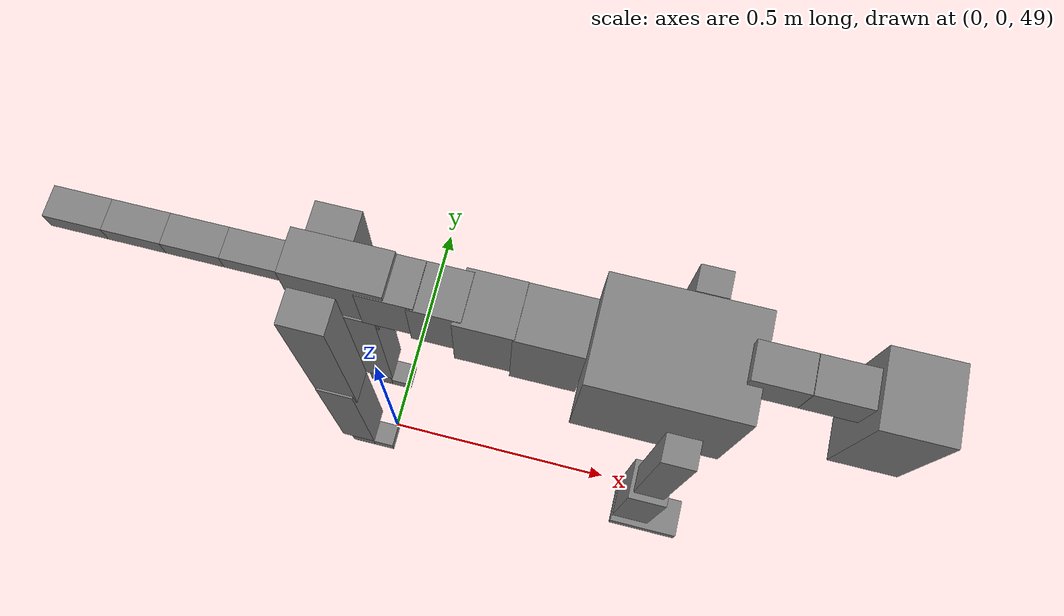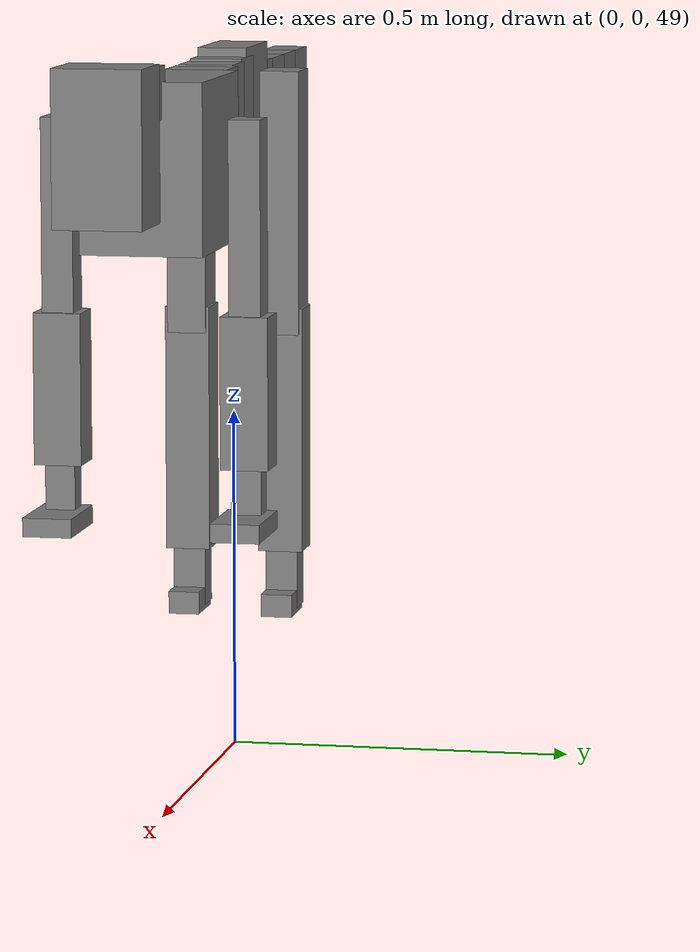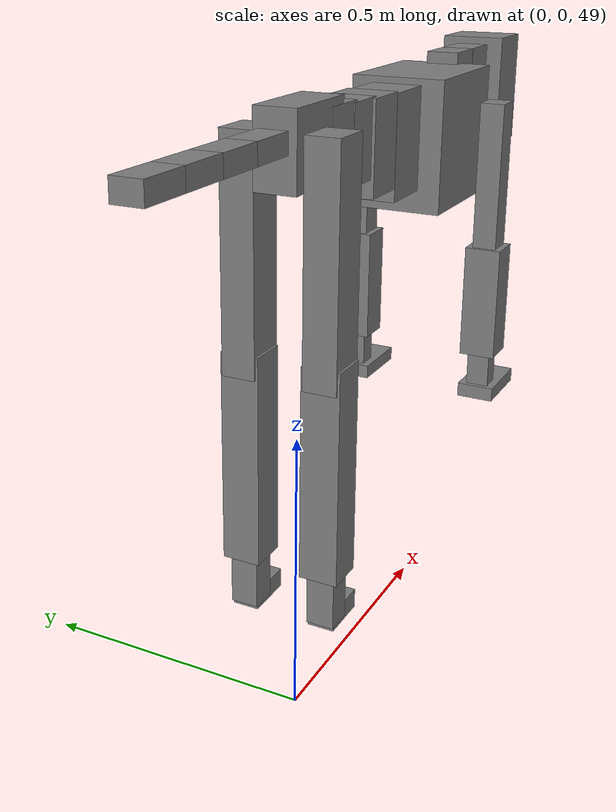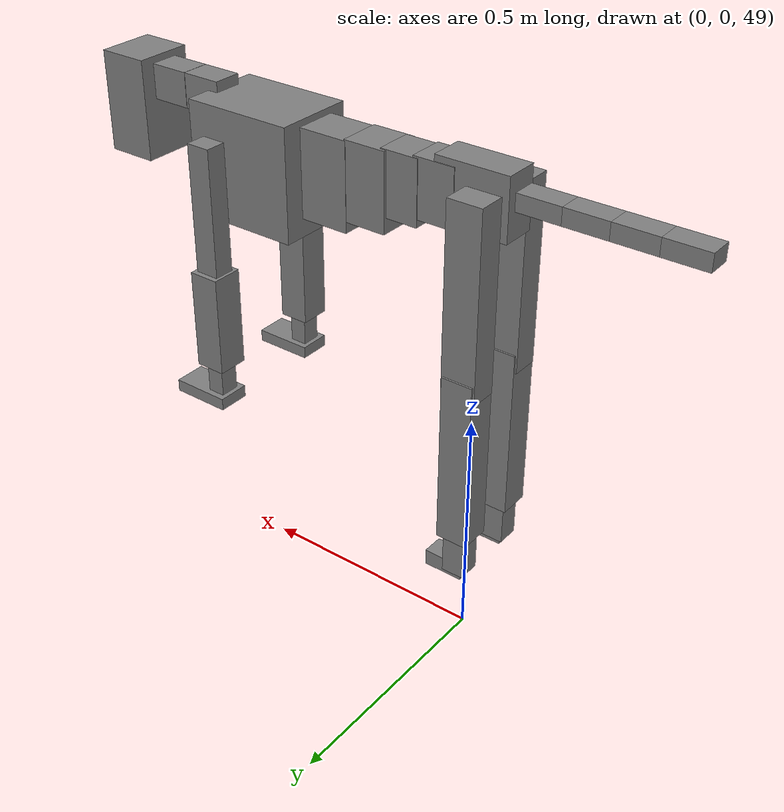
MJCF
<mujoco model="dog">

    <default>
        <joint armature="0.02" stiffness="1" damping="0.2" limited="true"/>
        <geom condim="3" friction="1 0.05 0.05" margin="0.01"/>
        <motor ctrllimited="true" ctrlrange="-1.0 1.0" forcelimited="true" gear="50"/>
    </default>

    <compiler inertiafromgeom="true" angle="radian"/>

    <option timestep="0.016" iterations="50" tolerance="1e-10" solver="Newton" jacobian="dense" cone="pyramidal"/>

    <size nconmax="20000" njmax="60000" nstack="5000000"/>
    <visual>
        <map force="0.1" zfar="30"/>
        <rgba haze="0.15 0.25 0.35 1"/>
        <quality shadowsize="2048"/>
        <global offwidth="800" offheight="800"/>
    </visual>

    <asset>
        <texture type="skybox" builtin="gradient" rgb1="0.3 0.5 0.7" rgb2="0 0 0" width="512" height="512"/>
        <texture name="texplane" type="2d" builtin="checker" rgb1=".2 .3 .4" rgb2=".1 0.15 0.2" width="512" height="512"
                 mark="cross" markrgb=".8 .8 .8"/>
        <texture name="texgeom" type="cube" builtin="flat" mark="cross" width="127" height="1278" rgb1="0.8 0.6 0.4"
                 rgb2="0.8 0.6 0.4" markrgb="1 1 1" random="0.01"/>

        <material name="matplane" reflectance="0.3" texture="texplane" texrepeat="1 1" texuniform="true"/>
        <material name="matgeom" texture="texgeom" texuniform="true" rgba="0.8 0.6 .4 1"/>
    </asset>

    <worldbody>
        <geom name="floor" pos="0 0 0" size="0 0 .25" type="plane" material="matplane" condim="3"/>

        <light directional="false" diffuse=".2 .2 .2" specular="0 0 0" pos="0 0 5" dir="0 0 -1" castshadow="false"/>
        <light mode="targetbodycom" target="torso" directional="false" diffuse=".8 .8 .8" specular="0.3 0.3 0.3"
               pos="0 0 4.0" dir="0 0 -1"/>

        <body name="root" pos="0 0 50">
            <freejoint name="root_1"/>
            <geom type="box" pos="0 0 -0.02" size="0.0774  0.0358  0.063" density="2030"/>

            <body name="spine1" pos="0.054 0 0">
                <joint name="spine1_y" axis="0 1 0" range="0 0.7" limited="true"/>
                <geom type="box" pos="0.02375 0 -0.03" size="0.04375  0.0375  0.05985" density="2030"/>

                <body name="spine2" pos="0.0612 0 0">
                    <joint name="spine2_y" axis="0 1 0" range="-0.15 0.15" limited="true"/>
                    <geom type="box" pos="0.03555  0  -0.04" size="0.04055  0.039  0.06615" density="2030"/>

                    <body name="spine3" pos="0.0730 0 0">
                        <joint name="spine3_y" axis="0 1 0" range="-0.15 0.15" limited="true"/>
                        <geom type="box" pos="0.03555  0  -0.057" size="0.04555  0.0445  0.081" density="2030"/>

                        <body name="spine4" pos="0.0780 0 0">
                            <joint name="spine4_y" axis="0 1 0" range="-0.15 0.15" limited="true"/>
                            <geom type="box" pos="0.05265  0  -0.07" size="0.05265  0.045  0.09135" density="2030"/>

                            <body name="torso" pos="0.1082 0 0">
                                <joint name="torso_y" axis="0 1 0" range="-0.15 0.15" limited="true"/>
                                <geom type="box" pos="0.11925  0  -0.085" size="0.11925  0.085  0.11745"
                                      density="2030"/>

                                <body name="neck1" pos="0.2160  0   0.0180">
                                    <joint name="neck1_y" axis="0 1 0" range="-1.2  -1" limited="true"/>
                                    <geom type="box" pos="0.0423  0  0" size="0.0423  0.03  0.036" density="2325"/>

                                    <body name="neck2" pos="0.0853  0  0">
                                        <joint name="neck2_y" axis="0 1 0" range="0.1  0" limited="true"/>
                                        <geom type="box" pos="0.0423  0  0" size="0.0423  0.03  0.036" density="2325"/>

                                        <body name="head" pos="0.0853  0  0">
                                            <joint name="head_y" axis="0 1 0" range="-0.3  -0.2" limited="true"/>
                                            <geom type="box" pos="0.0531  0  -0.055" size="0.0531  0.06  0.1044"
                                                  density="4030"/>

                                        </body>
                                    </body>
                                </body>

                                <body name="front_shoulder" pos="0.156  0   -0.0480">
                                    <joint name="front_shoulder_y" axis="0 1 0" range="-1 1.5" limited="true"/>
                                    <geom type="box" pos="0 0.13 -0.1201" size="0.0256  0.0219  0.1468" density="1158"/>
                                    <geom type="box" pos="0 -0.13 -0.1201" size="0.0256  0.0219  0.1468"
                                          density="1158"/>

                                    <body name="front_elbow" pos="0  0  -0.2403">
                                        <joint name="front_elbow_y" axis="0 1 0" range="-2 0" limited="true"/>
                                        <geom type="box" pos="0 0.13 -0.1050" size="0.0323  0.0330  0.1050"
                                              density="1081"/>
                                        <geom type="box" pos="0 -0.13 -0.1050" size="0.0323  0.0330  0.1050"
                                              density="1081"/>

                                        <body name="front_wrist" pos="0  0  -0.2099">
                                            <joint name="front_wrist_y" axis="0 1 0" range="-0.2 0" limited="true"/>
                                            <geom type="box" pos="0 0.13 -0.0392" size="0.0186  0.0207  0.0523"
                                                  density="1664"/>
                                            <geom type="box" pos="0 -0.13 -0.0392" size="0.0186  0.0207  0.0523"
                                                  density="1664"/>

                                            <body name="front_finger_end" pos="0  0  -0.0783">
                                                <joint name="front_finger_y" axis="0 1 0" range="-0.4 1"
                                                       limited="true"/>
                                                <geom type="box" pos="0.0340  0.13  0.0021"
                                                      size="0.0624  0.0340  0.0129" density="1515"/>
                                                <geom type="box" pos="0.0340  -0.13  0.0021"
                                                      size="0.0624  0.0340  0.0129" density="1515"/>

                                            </body>

                                        </body>
                                    </body>
                                </body>

                            </body>
                        </body>
                    </body>
                </body>
            </body>

            <body name="back_hip" pos="-0.03 0 -0.018">
                <joint name="back_hip_y" axis="0 1 0" range="-1.5 0.3" limited="true"/>
                <geom type="box" pos="0 0.07 -0.1715" size="0.0367  0.0288  0.1943" density="1154"/>
                <geom type="box" pos="0 -0.07 -0.1715" size="0.0367  0.0288  0.1943" density="1154"/>

                <body name="back_knee" pos="0  0  -0.3431">
                    <joint name="back_knee_y" axis="0 1 0" range="0 2.8" limited="true"/>
                    <geom type="box" pos="0 0.07 -0.1658" size="0.0333  0.0328  0.1813" density="1227"/>
                    <geom type="box" pos="0 -0.07 -0.1658" size="0.0333  0.0328  0.1813" density="1227"/>

                    <body name="back_ankle" pos="0  0  -0.3316">
                        <joint name="back_ankle_y" axis="0 1 0" range="-2.2 0" limited="true"/>
                        <geom type="box" pos="0 0.07 -0.0452" size="0.0236  0.0236  0.0565" density="1284"/>
                        <geom type="box" pos="0 -0.07 -0.0452" size="0.0236  0.0236  0.0565" density="1284"/>

                        <body name="back_toe_end" pos="0  0  -0.0904">
                            <joint name="back_toe_y" axis="0 1 0" range="-0.4 1" limited="true"/>
                            <geom type="box" pos="0.0228  0.07  -0.0017" size="0.0418  0.0228  0.0167" density="1515"/>
                            <geom type="box" pos="0.0228  -0.07  -0.0017" size="0.0418  0.0228  0.0167" density="1515"/>

                        </body>
                    </body>
                </body>
            </body>

            <body name="tail1" pos="-0.074 0 -0.006">
                <joint name="tail1_y" axis="0 1 0" range="-0.2 0.2" limited="true"/>
                <geom type="box" pos="-0.0536  0  0" size="0.045  0.025  0.0175" density="1587"/>

                <body name="tail2" pos="-0.09 0 0">
                    <joint name="tail2_y" axis="0 1 0" range="-0.2 0.2" limited="true"/>
                    <geom type="box" pos="-0.0536  0  0" size="0.045  0.025  0.0175" density="1587"/>

                    <body name="tail3" pos="-0.09 0 0">
                        <joint name="tail3_y" axis="0 1 0" range="-0.2 0.2" limited="true"/>
                        <geom type="box" pos="-0.0536  0  0" size="0.045  0.025  0.0175" density="1587"/>

                        <body name="tail4" pos="-0.09 0 0">
                            <joint name="tail4_y" axis="0 1 0" range="-0.2 0.2" limited="true"/>
                            <geom type="box" pos="-0.0536  0  0" size="0.045  0.025  0.0175" density="1587"/>

                        </body>
                    </body>
                </body>
            </body>
        </body>
    </worldbody>

    <actuator>
        <motor joint="spine1_y" forcerange="-150 150     "/>
        <motor joint="spine2_y" forcerange="-150 150     "/>
        <motor joint="spine3_y" forcerange="-150 150     "/>
        <motor joint="spine4_y" forcerange="-150 150     "/>
        <motor joint="torso_y" forcerange="-150 150     "/>
        <motor joint="neck1_y" forcerange="-100 100       "/>
        <motor joint="neck2_y" forcerange="-100 100       "/>
        <motor joint="head_y" forcerange="-150 150       "/>
        <motor joint="front_shoulder_y" forcerange="-139.19 106.85"/>
        <motor joint="front_elbow_y" forcerange="-192.84 147.31"/>
        <motor joint="front_wrist_y" forcerange="-75.53 90.22"/>
        <motor joint="front_finger_y" forcerange="-69.30 72.21"/>
        <motor joint="back_hip_y" forcerange="-232.14 351.97"/>
        <motor joint="back_knee_y" forcerange="-398.36 278.38"/>
        <motor joint="back_angle_y" forcerange="-107.63 170.34"/>
        <motor joint="back_toe_y" forcerange="-57.31 44.95"/>
        <motor joint="tail1_y" forcerange="-50 50     "/>
        <motor joint="tail2_y" forcerange="-50 50     "/>
        <motor joint="tail3_y" forcerange="-50 50     "/>
        <motor joint="tail4_y" forcerange="-50 50     "/>
    </actuator>
</mujoco>
